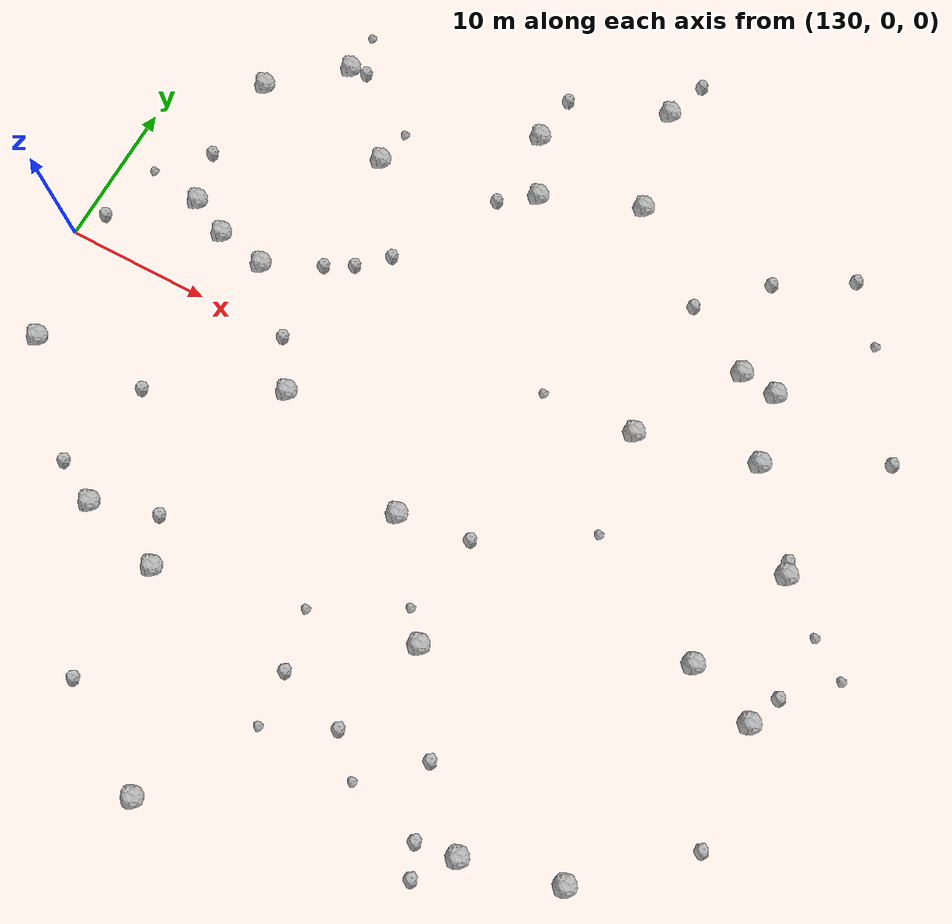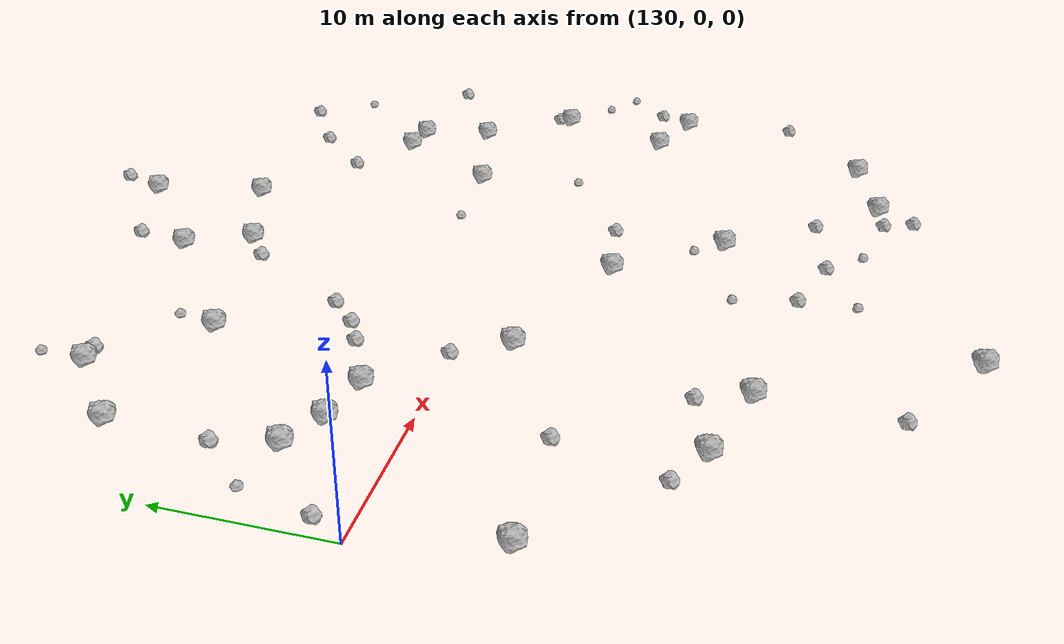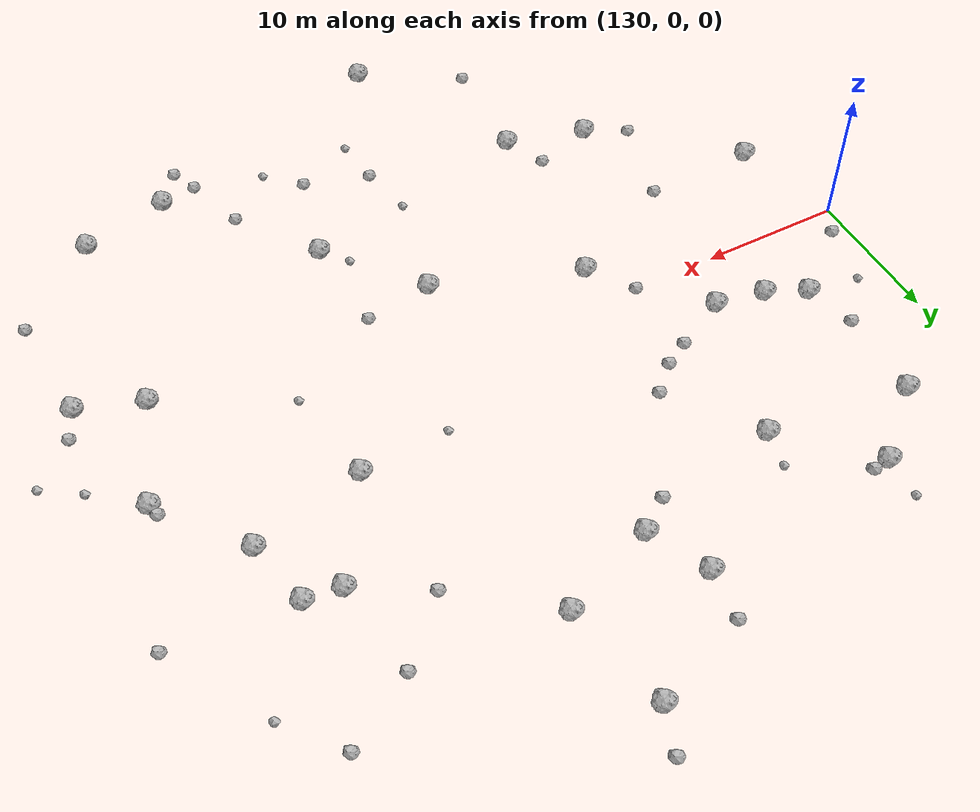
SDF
<sdf version="1.6">
 <world name="default">
  <include><uri>model://sun</uri></include>
  <model name="rock1_4_1">
   <include><uri>model://rock1</uri><pose>175.99883382354903 11.616327702489471 0.5 0 0 0</pose></include>
  </model>
  <model name="rock1_4_2">
   <include><uri>model://rock1</uri><pose>148.29056738523747 -3.0680571827648464 0.5 0 0 0</pose></include>
  </model>
  <model name="rock1_4_3">
   <include><uri>model://rock1</uri><pose>135.52349934503926 15.601520121589324 0.5 0 0 0</pose></include>
  </model>
  <model name="rock1_4_4">
   <include><uri>model://rock1</uri><pose>183.1055008691063 -8.042738037385394 0.5 0 0 0</pose></include>
  </model>
  <model name="rock1_4_5">
   <include><uri>model://rock1</uri><pose>156.13632738674573 16.987916293677934 0.5 0 0 0</pose></include>
  </model>
  <model name="rock1_4_6">
   <include><uri>model://rock1</uri><pose>173.5048358670092 11.936680200842943 0.5 0 0 0</pose></include>
  </model>
  <model name="rock1_4_7">
   <include><uri>model://rock1</uri><pose>142.23700329497524 3.836520770714287 0.5 0 0 0</pose></include>
  </model>
  <model name="rock1_4_8">
   <include><uri>model://rock1</uri><pose>177.5758155856767 -21.345427251400114 0.5 0 0 0</pose></include>
  </model>
  <model name="rock1_4_9">
   <include><uri>model://rock1</uri><pose>140.11145184544222 19.58046987720094 0.5 0 0 0</pose></include>
  </model>
  <model name="rock1_4_10">
   <include><uri>model://rock1</uri><pose>171.4321260636187 -22.900396485930308 0.5 0 0 0</pose></include>
  </model>
  <model name="rock1_4_11">
   <include><uri>model://rock1</uri><pose>169.14353985905905 5.006368841294865 0.5 0 0 0</pose></include>
  </model>
  <model name="rock1_4_12">
   <include><uri>model://rock1</uri><pose>158.4537416777427 -6.776245296856132 0.5 0 0 0</pose></include>
  </model>
  <model name="rock1_4_13">
   <include><uri>model://rock1</uri><pose>146.80077821122856 -16.843640012827734 0.5 0 0 0</pose></include>
  </model>
  <model name="rock1_4_14">
   <include><uri>model://rock1</uri><pose>178.67828829087864 -6.4346066149864 0.5 0 0 0</pose></include>
  </model>
  <model name="rock1_4_15">
   <include><uri>model://rock1</uri><pose>141.16909057716694 -15.21758489407369 0.5 0 0 0</pose></include>
  </model>
  <model name="rock1_4_16">
   <include><uri>model://rock1</uri><pose>162.77384700202276 19.540115309197347 0.5 0 0 0</pose></include>
  </model>
  <model name="rock1_4_17">
   <include><uri>model://rock1</uri><pose>177.0232147230695 6.924405496318933 0.5 0 0 0</pose></include>
  </model>
  <model name="rock1_4_18">
   <include><uri>model://rock1</uri><pose>161.23282069190532 26.87960823251501 0.5 0 0 0</pose></include>
  </model>
  <model name="rock1_4_19">
   <include><uri>model://rock1</uri><pose>136.08476454178052 5.810491016458386 0.5 0 0 0</pose></include>
  </model>
  <model name="rock1_4_20">
   <include><uri>model://rock1</uri><pose>154.20485266920736 21.043984423765572 0.5 0 0 0</pose></include>
  </model>
  <model name="rock1_4_21">
   <include><uri>model://rock1</uri><pose>181.41906347708914 1.1824211378334226 0.5 0 0 0</pose></include>
  </model>
  <model name="rock1_4_22">
   <include><uri>model://rock1</uri><pose>138.778022835136 4.503027285759117 0.5 0 0 0</pose></include>
  </model>
  <model name="rock1_4_23">
   <include><uri>model://rock1</uri><pose>132.11573242625366 -7.506524271778204 0.5 0 0 0</pose></include>
  </model>
  <model name="rock1_4_24">
   <include><uri>model://rock1</uri><pose>153.15768410564218 -28.97635803578025 0.5 0 0 0</pose></include>
  </model>
  <model name="rock1_4_25">
   <include><uri>model://rock1</uri><pose>163.5742270747266 -13.263349055782317 0.5 0 0 0</pose></include>
  </model>
  <model name="rock1_4_26">
   <include><uri>model://rock1</uri><pose>145.4496450674888 14.318310844393366 0.5 0 0 0</pose></include>
  </model>
  <model name="rock2_4_0">
   <include><uri>model://rock2</uri><pose>141.26702280078658 19.747052976304445 0.3 0 0 0</pose></include>
  </model>
  <model name="rock2_4_1">
   <include><uri>model://rock2</uri><pose>183.6746476345488 -15.928122491510806 0.3 0 0 0</pose></include>
  </model>
  <model name="rock2_4_2">
   <include><uri>model://rock2</uri><pose>138.2244042187267 -13.717551081622585 0.3 0 0 0</pose></include>
  </model>
  <model name="rock2_4_3">
   <include><uri>model://rock2</uri><pose>181.19171478214886 2.045025475767723 0.3 0 0 0</pose></include>
  </model>
  <model name="rock2_4_4">
   <include><uri>model://rock2</uri><pose>169.63589338558725 -25.25921638749132 0.3 0 0 0</pose></include>
  </model>
  <model name="rock2_4_5">
   <include><uri>model://rock2</uri><pose>167.4655318572618 -18.931880173728644 0.3 0 0 0</pose></include>
  </model>
  <model name="rock2_4_6">
   <include><uri>model://rock2</uri><pose>184.0564769731671 -5.863319855479002 0.3 0 0 0</pose></include>
  </model>
  <model name="rock2_4_7">
   <include><uri>model://rock2</uri><pose>145.44623922300502 -13.86608752491269 0.3 0 0 0</pose></include>
  </model>
  <model name="rock2_4_8">
   <include><uri>model://rock2</uri><pose>146.2458275621265 -24.840032094988562 0.3 0 0 0</pose></include>
  </model>
  <model name="rock2_4_9">
   <include><uri>model://rock2</uri><pose>163.26349433881933 -6.07037351821339 0.3 0 0 0</pose></include>
  </model>
  <model name="rock2_4_10">
   <include><uri>model://rock2</uri><pose>153.84489480548805 15.368433492686044 0.3 0 0 0</pose></include>
  </model>
  <model name="rock2_4_11">
   <include><uri>model://rock2</uri><pose>172.67002305415022 18.538258282859196 0.3 0 0 0</pose></include>
  </model>
  <model name="rock2_4_12">
   <include><uri>model://rock2</uri><pose>168.85118290981757 -23.327947010269007 0.3 0 0 0</pose></include>
  </model>
  <model name="rock2_4_13">
   <include><uri>model://rock2</uri><pose>168.79430449967262 14.68878666020396 0.3 0 0 0</pose></include>
  </model>
  <model name="rock2_4_14">
   <include><uri>model://rock2</uri><pose>177.5088299210727 21.387956362005347 0.3 0 0 0</pose></include>
  </model>
  <model name="rock2_4_15">
   <include><uri>model://rock2</uri><pose>162.2976432728535 29.881148432277726 0.3 0 0 0</pose></include>
  </model>
  <model name="rock2_4_16">
   <include><uri>model://rock2</uri><pose>139.9936361604869 -7.317096194058937 0.3 0 0 0</pose></include>
  </model>
  <model name="rock2_4_17">
   <include><uri>model://rock2</uri><pose>135.09695903210644 9.347187519742981 0.3 0 0 0</pose></include>
  </model>
  <model name="rock2_4_18">
   <include><uri>model://rock2</uri><pose>157.23600076273576 -18.463138410188176 0.3 0 0 0</pose></include>
  </model>
  <model name="rock2_4_19">
   <include><uri>model://rock2</uri><pose>145.95651917806578 5.697116083962591 0.3 0 0 0</pose></include>
  </model>
  <model name="rock2_4_20">
   <include><uri>model://rock2</uri><pose>154.6247154809431 24.49842368903559 0.3 0 0 0</pose></include>
  </model>
  <model name="rock2_4_21">
   <include><uri>model://rock2</uri><pose>161.78359059735476 -19.902937387718108 0.3 0 0 0</pose></include>
  </model>
  <model name="rock2_4_22">
   <include><uri>model://rock2</uri><pose>147.76253749545523 6.68826474825363 0.3 0 0 0</pose></include>
  </model>
  <model name="rock2_4_23">
   <include><uri>model://rock2</uri><pose>184.43021601407787 10.849211369787817 0.3 0 0 0</pose></include>
  </model>
  <model name="rock2_4_24">
   <include><uri>model://rock2</uri><pose>131.19417097390345 1.9904212739696625 0.3 0 0 0</pose></include>
  </model>
  <model name="rock2_4_25">
   <include><uri>model://rock2</uri><pose>146.13600648516362 0.061311695519343345 0.3 0 0 0</pose></include>
  </model>
  <model name="rock2_4_26">
   <include><uri>model://rock2</uri><pose>149.61659152507642 8.428775077538802 0.3 0 0 0</pose></include>
  </model>
  <model name="rock3_4_0">
   <include><uri>model://rock3</uri><pose>184.50800492918978 -1.520500125428125 0.2 0 0 0</pose></include>
  </model>
  <model name="rock3_4_1">
   <include><uri>model://rock3</uri><pose>186.9676973333047 -3.16998866929044 0.2 0 0 0</pose></include>
  </model>
  <model name="rock3_4_2">
   <include><uri>model://rock3</uri><pose>180.3790542227193 17.735465360712887 0.2 0 0 0</pose></include>
  </model>
  <model name="rock3_4_3">
   <include><uri>model://rock3</uri><pose>157.47058394957872 -22.03037214624085 0.2 0 0 0</pose></include>
  </model>
  <model name="rock3_4_4">
   <include><uri>model://rock3</uri><pose>132.26191396512635 6.337107726401065 0.2 0 0 0</pose></include>
  </model>
  <model name="rock3_4_5">
   <include><uri>model://rock3</uri><pose>145.9218697586622 16.831867629977303 0.2 0 0 0</pose></include>
  </model>
  <model name="rock3_4_6">
   <include><uri>model://rock3</uri><pose>170.12312373100727 -1.9788679365596522 0.2 0 0 0</pose></include>
  </model>
  <model name="rock3_4_7">
   <include><uri>model://rock3</uri><pose>140.1802412901165 22.451668057757402 0.2 0 0 0</pose></include>
  </model>
  <model name="rock3_4_8">
   <include><uri>model://rock3</uri><pose>163.97532613455985 -22.157443840916905 0.2 0 0 0</pose></include>
  </model>
  <model name="rock3_4_9">
   <include><uri>model://rock3</uri><pose>162.03249150115178 -11.53669529763198 0.2 0 0 0</pose></include>
  </model>
  <model name="rock3_4_10">
   <include><uri>model://rock3</uri><pose>162.84656598372254 4.647734961041174 0.2 0 0 0</pose></include>
  </model>
  <model name="rock3_4_11">
   <include><uri>model://rock3</uri><pose>156.4312158761232 -14.63584877123694 0.2 0 0 0</pose></include>
  </model>
 </world>
</sdf>
